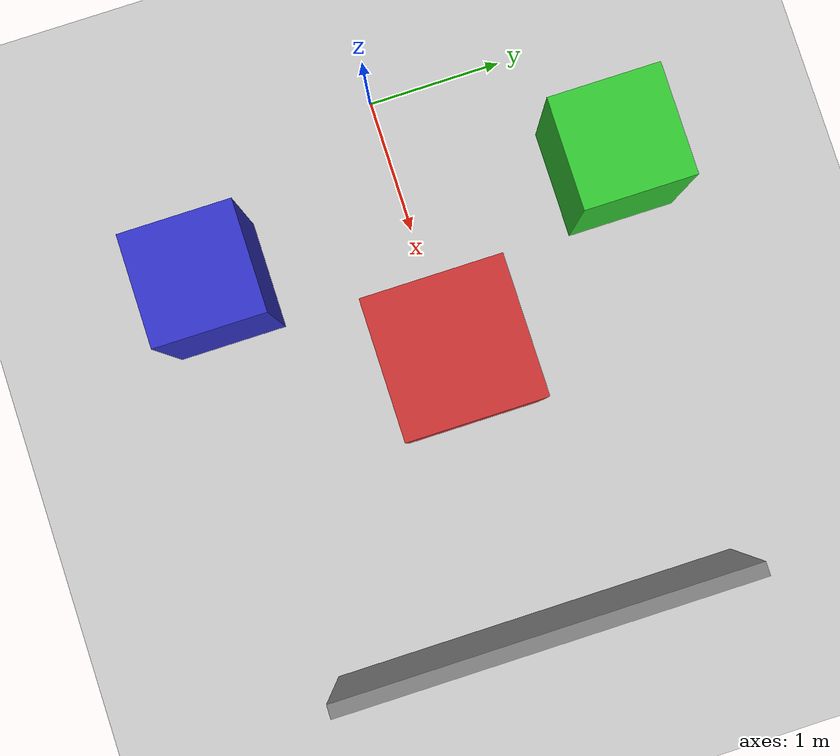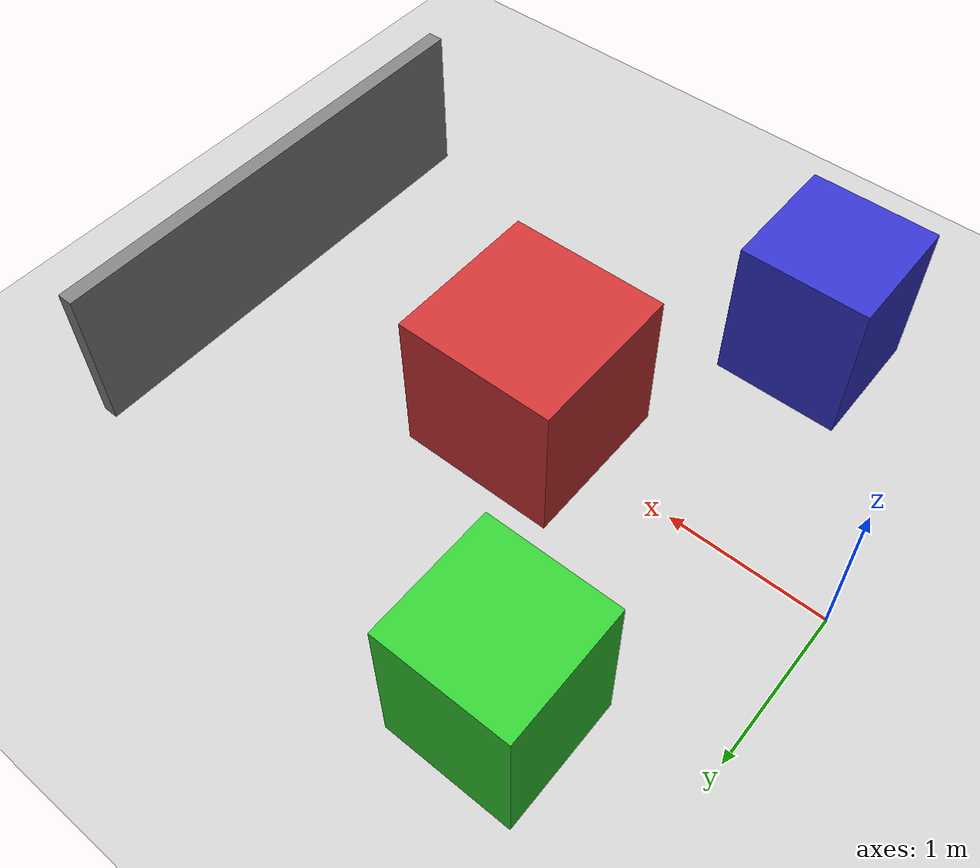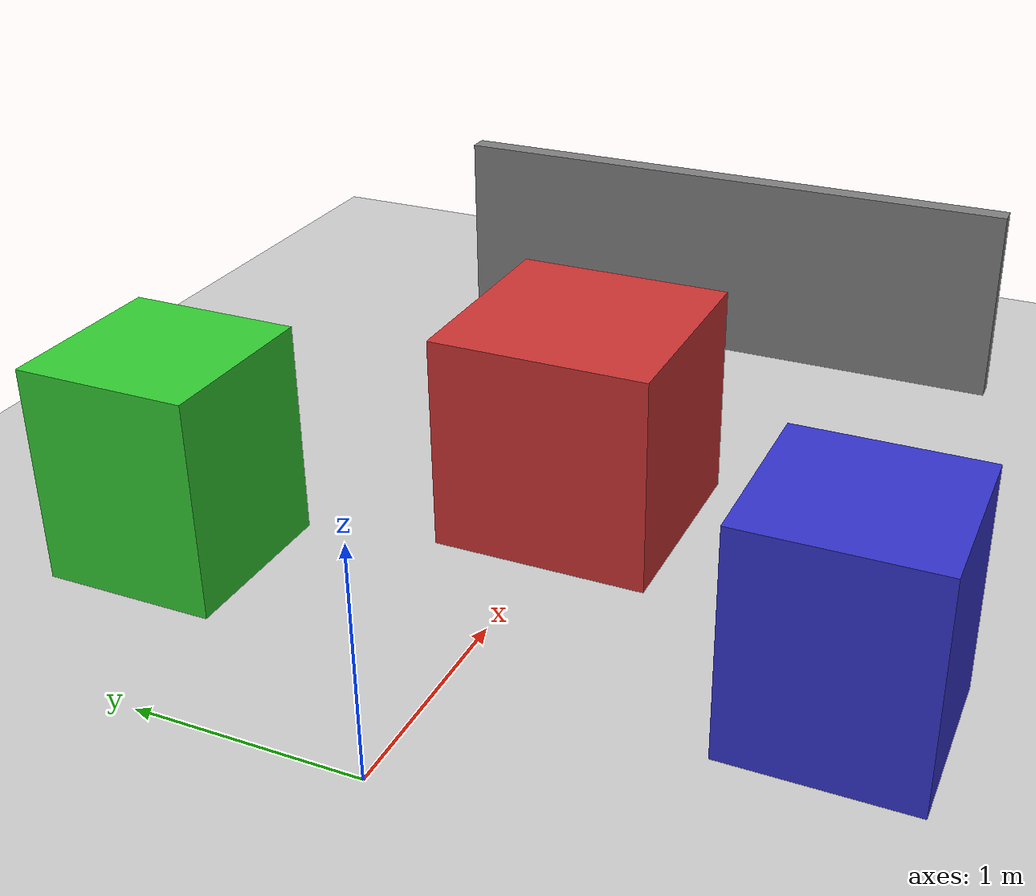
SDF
<?xml version="1.0" ?>
<sdf version="1.10">
  <world name="obstacles">
    <physics type="bullet">
      <max_step_size>0.001</max_step_size>
      <real_time_factor>1.0</real_time_factor>
      <real_time_update_rate>1000</real_time_update_rate>
    </physics>
    <plugin filename="ignition-gazebo-physics-system" name="ignition::gazebo::systems::Physics"></plugin>
    <plugin filename="ignition-gazebo-user-commands-system" name="ignition::gazebo::systems::UserCommands"></plugin>
    <plugin filename="ignition-gazebo-scene-broadcaster-system" name="ignition::gazebo::systems::SceneBroadcaster"></plugin>
    <plugin filename="ignition-gazebo-sensors-system" name="ignition::gazebo::systems::Sensors">
      <render_engine>ogre2</render_engine>
    </plugin>
    <plugin filename="ignition-gazebo-imu-system" name="ignition::gazebo::systems::Imu"></plugin>

    <!-- Ground plane -->
    <model name="ground_plane">
      <static>true</static>
      <link name="link">
        <collision name="collision">
          <geometry>
            <plane>
              <normal>0 0 1</normal>
              <size>100 100</size>
            </plane>
          </geometry>
        </collision>
        <visual name="visual">
          <geometry>
            <plane>
              <normal>0 0 1</normal>
              <size>100 100</size>
            </plane>
          </geometry>
          <material>
            <ambient>0.8 0.8 0.8 1</ambient>
            <diffuse>0.8 0.8 0.8 1</diffuse>
            <specular>0.8 0.8 0.8 1</specular>
          </material>
        </visual>
      </link>
    </model>

    <!-- Sun light -->
    <light type="directional" name="sun">
      <cast_shadows>true</cast_shadows>
      <pose>0 0 10 0 0 0</pose>
      <diffuse>1 1 1 1</diffuse>
      <specular>0.5 0.5 0.5 1</specular>
      <direction>0 0 -1</direction>
      <attenuation>
        <range>1000</range>
        <constant>0.9</constant>
        <linear>0.01</linear>
        <quadratic>0.001</quadratic>
      </attenuation>
    </light>

    <!-- Obstacle 1: Box in front -->
    <model name="obstacle_1">
      <static>true</static>
      <pose>2 0 0.5 0 0 0</pose>
      <link name="link">
        <collision name="collision">
          <geometry>
            <box>
              <size>1 1 1</size>
            </box>
          </geometry>
        </collision>
        <visual name="visual">
          <geometry>
            <box>
              <size>1 1 1</size>
            </box>
          </geometry>
          <material>
            <ambient>0.8 0.2 0.2 1</ambient>
            <diffuse>0.8 0.2 0.2 1</diffuse>
            <specular>0.5 0.5 0.5 1</specular>
          </material>
        </visual>
      </link>
    </model>

    <!-- Obstacle 2: Box to the left -->
    <model name="obstacle_2">
      <static>true</static>
      <pose>1 1.5 0.5 0 0 0</pose>
      <link name="link">
        <collision name="collision">
          <geometry>
            <box>
              <size>0.8 0.8 1</size>
            </box>
          </geometry>
        </collision>
        <visual name="visual">
          <geometry>
            <box>
              <size>0.8 0.8 1</size>
            </box>
          </geometry>
          <material>
            <ambient>0.2 0.8 0.2 1</ambient>
            <diffuse>0.2 0.8 0.2 1</diffuse>
            <specular>0.5 0.5 0.5 1</specular>
          </material>
        </visual>
      </link>
    </model>

    <!-- Obstacle 3: Box to the right -->
    <model name="obstacle_3">
      <static>true</static>
      <pose>1 -1.5 0.5 0 0 0</pose>
      <link name="link">
        <collision name="collision">
          <geometry>
            <box>
              <size>0.8 0.8 1</size>
            </box>
          </geometry>
        </collision>
        <visual name="visual">
          <geometry>
            <box>
              <size>0.8 0.8 1</size>
            </box>
          </geometry>
          <material>
            <ambient>0.2 0.2 0.8 1</ambient>
            <diffuse>0.2 0.2 0.8 1</diffuse>
            <specular>0.5 0.5 0.5 1</specular>
          </material>
        </visual>
      </link>
    </model>

    <!-- Obstacle 4: Wall -->
    <model name="wall">
      <static>true</static>
      <pose>4 0 0.5 0 0 0</pose>
      <link name="link">
        <collision name="collision">
          <geometry>
            <box>
              <size>0.1 3 1</size>
            </box>
          </geometry>
        </collision>
        <visual name="visual">
          <geometry>
            <box>
              <size>0.1 3 1</size>
            </box>
          </geometry>
          <material>
            <ambient>0.5 0.5 0.5 1</ambient>
            <diffuse>0.5 0.5 0.5 1</diffuse>
            <specular>0.3 0.3 0.3 1</specular>
          </material>
        </visual>
      </link>
    </model>

    <!-- Ridgeback robot spawned with ROS plugin -->
    <plugin
      filename="ignition-gazebo-spawn-system"
      name="ignition::gazebo::systems::SpawnSystem">
    </plugin>

  </world>
</sdf>
